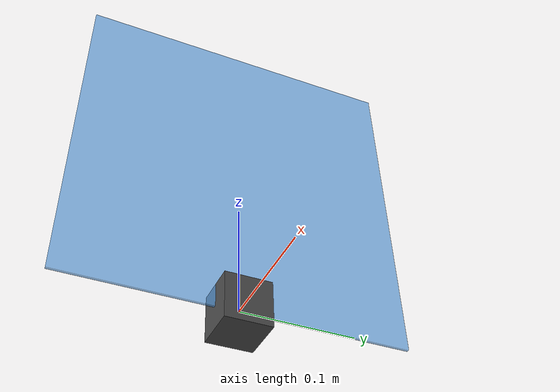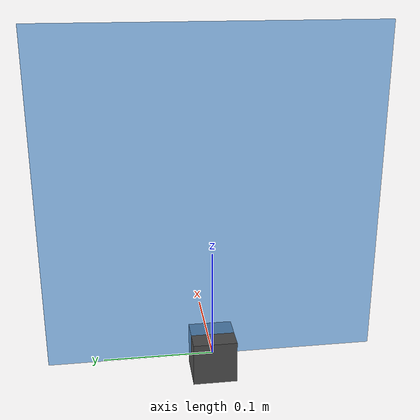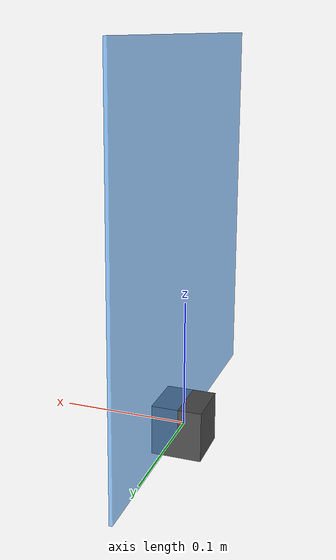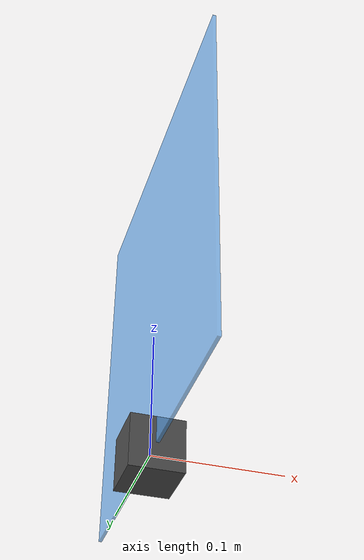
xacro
<?xml version="1.0"?>
<robot xmlns:xacro="http://www.ros.org/wiki/xacro" name="odrive_wec_dyno">

  <!-- Minimal kinematic tree -->
  <link name="base_link">
    <visual>
      <geometry>
        <box size="0.04 0.04 0.04"/>
      </geometry>
      <material name="dark_grey">
        <color rgba="0.3 0.3 0.3 1.0"/>
      </material>
    </visual>
  </link>

  <!-- 0.25cm thick x 30cm wide x 30cm tall acrylic flap (thickness x width x height) -->
  <!-- CoM is at z=0.15 (half of 0.30m height) above the joint origin -->
  <link name="motor_link">
    <visual>
      <origin xyz="0 0 0.15" rpy="0 0 0"/>
      <geometry>
        <!-- size: x=0.0025m (thickness), y=0.30m (width along rotation axis), z=0.30m (height) -->
        <box size="0.0025 0.30 0.30"/>
      </geometry>
      <material name="acrylic_blue">
        <color rgba="0.4 0.7 1.0 0.7"/>
      </material>
    </visual>
    <inertial>
      <origin xyz="0 0 0.15"/>
      <mass value="0.5"/>
      <inertia ixx="0.015" ixy="0" ixz="0" iyy="0.00375" iyz="0" izz="0.000015"/>
    </inertial>
  </link>

  <joint name="motor_joint" type="continuous">
    <parent link="base_link"/>
    <child link="motor_link"/>
    <origin xyz="0 0 0" rpy="0 0 0"/>
    <axis xyz="0 1 0"/>
  </joint>

  <!-- PTO motor (axis1) — same shaft as motor_joint, passive linear damper -->
  <!-- Commented out: pto_link/pto_joint are not published by joint_state_broadcaster,
       causing robot_state_publisher to fail computing TF → RViz RobotModel error. -->

  <!-- ros2_control hardware — both axes on the same ODrive board / CAN bus -->
  <ros2_control name="ODriveSystem" type="system">
    <hardware>
      <plugin>odrive_ros2_control_plugin/ODriveHardwareInterface</plugin>
      <!-- CAN interface name -->
      <param name="can">can0</param>
    </hardware>

    <!-- Motor 1: Hydro Emulator (ODrive axis0, node_id=0) -->
    <joint name="motor_joint">
      <param name="node_id">0</param>

      <!-- Command interfaces the hardware plugin exports -->
      <command_interface name="effort"/>
      <command_interface name="velocity"/>
      <command_interface name="position"/>

      <!-- State interfaces the hardware plugin exports -->
      <state_interface name="effort"/>
      <state_interface name="velocity"/>
      <state_interface name="position"/>
      <state_interface name="electrical_power"/>
      <state_interface name="mechanical_power"/>
    </joint>

    <!-- Motor 2: PTO / Power Take-Off (ODrive axis1, node_id=1) -->
    <!-- Commented out: pto_link/pto_joint kinematic elements are commented out above,
         so ros2_control cannot reference it either (controller_manager would crash). -->
  </ros2_control>

</robot>
